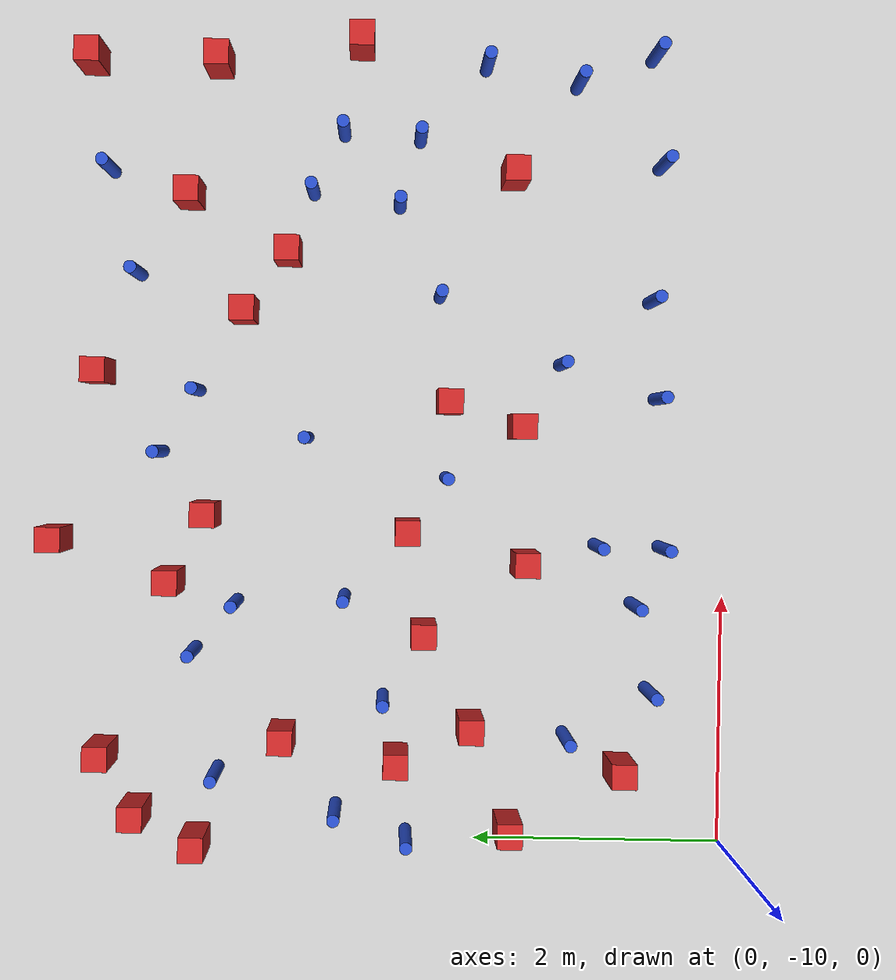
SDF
<sdf version="1.6">
 <world name="default">
  <model name="ground_plane">
   <static>1</static>
   <link name="link">
    <collision name="collision">
     <geometry><plane><normal>0 0 1</normal><size>100 100</size></plane></geometry>
     <surface><friction><ode><mu>100</mu><mu2>50</mu2></ode></friction></surface>
    </collision>
    <visual name="visual">
     <cast_shadows>0</cast_shadows>
     <geometry><plane><normal>0 0 1</normal><size>100 100</size></plane></geometry>
     <material>
      <ambient>1.0 1.0 1.0 1.0</ambient>
      <diffuse>0.8 0.8 0.8 1.0</diffuse>
      <specular>0.01 0.01 0.01 1.000000</specular>
     </material>
    </visual>
   </link>
  </model>
  <model name="pole_obstacle0">
   <static>true</static>
   <pose>0.552288672222 -5.89928015238 7.38925637345e-09 -8.471706928e-08 1.24976765086e-08 -1.74513093015e-07</pose>
   <link name="link">
    <pose>0 0 0.3 0 -0 0</pose>
    <inertial>
     <mass>1</mass>
     <inertia><ixx>0.145833</ixx><ixy>0</ixy><ixz>0</ixz><iyy>0.145833</iyy><iyz>0</iyz><izz>0.125</izz></inertia>
    </inertial>
    <collision name="collision">
     <geometry><cylinder><radius>0.05</radius><length>.6</length></cylinder></geometry>
    </collision>
    <visual name="visual">
     <geometry><cylinder><radius>0.05</radius><length>.6</length></cylinder></geometry>
     <material>
      <script><name>Gazebo/Blue</name><uri>file://media/materials/scripts/gazebo.material</uri></script>
     </material>
    </visual>
   </link>
  </model>
  <model name="pole_obstacle2">
   <static>true</static>
   <pose>5.726747599 -6.84969473188 7.38925637345e-09 -8.47170692796e-08 1.24976764786e-08 -1.74513093032e-07</pose>
   <link name="link">
    <pose>0 0 0.3 0 -0 0</pose>
    <inertial>
     <mass>1</mass>
     <inertia><ixx>0.145833</ixx><ixy>0</ixy><ixz>0</ixz><iyy>0.145833</iyy><iyz>0</iyz><izz>0.125</izz></inertia>
    </inertial>
    <collision name="collision">
     <geometry><cylinder><radius>0.05</radius><length>.6</length></cylinder></geometry>
    </collision>
    <visual name="visual">
     <geometry><cylinder><radius>0.05</radius><length>.6</length></cylinder></geometry>
     <material>
      <script><name>Gazebo/Blue</name><uri>file://media/materials/scripts/gazebo.material</uri></script>
     </material>
    </visual>
   </link>
  </model>
  <model name="pole_obstacle5">
   <static>true</static>
   <pose>0.265713233834 -6.86529294261 7.38925637345e-09 -8.47170692799e-08 1.24976765101e-08 -1.74513093014e-07</pose>
   <link name="link">
    <pose>0 0 0.3 0 -0 0</pose>
    <inertial>
     <mass>1</mass>
     <inertia><ixx>0.145833</ixx><ixy>0</ixy><ixz>0</ixz><iyy>0.145833</iyy><iyz>0</iyz><izz>0.125</izz></inertia>
    </inertial>
    <collision name="collision">
     <geometry><cylinder><radius>0.05</radius><length>.6</length></cylinder></geometry>
    </collision>
    <visual name="visual">
     <geometry><cylinder><radius>0.05</radius><length>.6</length></cylinder></geometry>
     <material>
      <script><name>Gazebo/Blue</name><uri>file://media/materials/scripts/gazebo.material</uri></script>
     </material>
    </visual>
   </link>
  </model>
  <model name="pole_obstacle13">
   <static>true</static>
   <pose>3.62405460499 -5.69707315796 7.38925637345e-09 -8.47170692798e-08 1.24976765033e-08 -1.74513093019e-07</pose>
   <link name="link">
    <pose>0 0 0.3 0 -0 0</pose>
    <inertial>
     <mass>1</mass>
     <inertia><ixx>0.145833</ixx><ixy>0</ixy><ixz>0</ixz><iyy>0.145833</iyy><iyz>0</iyz><izz>0.125</izz></inertia>
    </inertial>
    <collision name="collision">
     <geometry><cylinder><radius>0.05</radius><length>.6</length></cylinder></geometry>
    </collision>
    <visual name="visual">
     <geometry><cylinder><radius>0.05</radius><length>.6</length></cylinder></geometry>
     <material>
      <script><name>Gazebo/Blue</name><uri>file://media/materials/scripts/gazebo.material</uri></script>
     </material>
    </visual>
   </link>
  </model>
  <model name="pole_obstacle14">
   <static>true</static>
   <pose>1.97462156829 -6.91148437594 7.38925637345e-09 -8.471706928e-08 1.24976765202e-08 -1.7451309301e-07</pose>
   <link name="link">
    <pose>0 0 0.3 0 -0 0</pose>
    <inertial>
     <mass>1</mass>
     <inertia><ixx>0.145833</ixx><ixy>0</ixy><ixz>0</ixz><iyy>0.145833</iyy><iyz>0</iyz><izz>0.125</izz></inertia>
    </inertial>
    <collision name="collision">
     <geometry><cylinder><radius>0.05</radius><length>.6</length></cylinder></geometry>
    </collision>
    <visual name="visual">
     <geometry><cylinder><radius>0.05</radius><length>.6</length></cylinder></geometry>
     <material>
      <script><name>Gazebo/Blue</name><uri>file://media/materials/scripts/gazebo.material</uri></script>
     </material>
    </visual>
   </link>
  </model>
  <model name="square_post_obstacle18">
   <static>true</static>
   <pose>6.28908925948 -4.81410016549 1.91545236811e-07 -7.35059704564e-06 1.12565212e-07 2.39332434364e-05</pose>
   <link name="link">
    <pose>0 0 0.25 0 -0 0</pose>
    <inertial>
     <mass>100</mass>
     <inertia>
      <ixx>0.166667</ixx>
      <ixy>0</ixy>
      <ixz>0</ixz>
      <iyy>0.166667</iyy>
      <iyz>0</iyz>
      <izz>0.166667</izz>
     </inertia>
    </inertial>
    <collision name="collision"><geometry><box><size>.2 .2 .5</size></box></geometry></collision>
    <visual name="visual">
     <geometry><box><size>.2 .2 .5</size></box></geometry>
     <material>
      <script><name>Gazebo/Red</name><uri>file://media/materials/scripts/gazebo.material</uri></script>
     </material>
    </visual>
   </link>
  </model>
  <model name="square_post_obstacle24">
   <static>true</static>
   <pose>5.2009959434 -5.61545775832 1.91545236811e-07 -7.35059704564e-06 1.12565212e-07 2.39332434364e-05</pose>
   <link name="link">
    <pose>0 0 0.25 0 -0 0</pose>
    <inertial>
     <mass>100</mass>
     <inertia>
      <ixx>0.166667</ixx>
      <ixy>0</ixy>
      <ixz>0</ixz>
      <iyy>0.166667</iyy>
      <iyz>0</iyz>
      <izz>0.166667</izz>
     </inertia>
    </inertial>
    <collision name="collision"><geometry><box><size>.2 .2 .5</size></box></geometry></collision>
    <visual name="visual">
     <geometry><box><size>.2 .2 .5</size></box></geometry>
     <material>
      <script><name>Gazebo/Red</name><uri>file://media/materials/scripts/gazebo.material</uri></script>
     </material>
    </visual>
   </link>
  </model>
  <model name="pole_obstacle34">
   <static>true</static>
   <pose>0.0611854863166 -7.43807968166 7.38925637345e-09 -8.471706928e-08 1.2497676505e-08 -1.74513093019e-07</pose>
   <link name="link">
    <pose>0 0 0.3 0 -0 0</pose>
    <inertial>
     <mass>1</mass>
     <inertia><ixx>0.145833</ixx><ixy>0</ixy><ixz>0</ixz><iyy>0.145833</iyy><iyz>0</iyz><izz>0.125</izz></inertia>
    </inertial>
    <collision name="collision">
     <geometry><cylinder><radius>0.05</radius><length>.6</length></cylinder></geometry>
    </collision>
    <visual name="visual">
     <geometry><cylinder><radius>0.05</radius><length>.6</length></cylinder></geometry>
     <material>
      <script><name>Gazebo/Blue</name><uri>file://media/materials/scripts/gazebo.material</uri></script>
     </material>
    </visual>
   </link>
  </model>
  <model name="pole_obstacle54">
   <static>true</static>
   <pose>2.41237021046 -9.46922981814 7.38925637345e-09 -8.47170692793e-08 1.24976764408e-08 -1.74513093041e-07</pose>
   <link name="link">
    <pose>0 0 0.3 0 -0 0</pose>
    <inertial>
     <mass>1</mass>
     <inertia><ixx>0.145833</ixx><ixy>0</ixy><ixz>0</ixz><iyy>0.145833</iyy><iyz>0</iyz><izz>0.125</izz></inertia>
    </inertial>
    <collision name="collision">
     <geometry><cylinder><radius>0.05</radius><length>.6</length></cylinder></geometry>
    </collision>
    <visual name="visual">
     <geometry><cylinder><radius>0.05</radius><length>.6</length></cylinder></geometry>
     <material>
      <script><name>Gazebo/Blue</name><uri>file://media/materials/scripts/gazebo.material</uri></script>
     </material>
    </visual>
   </link>
  </model>
  <model name="square_post_obstacle44">
   <static>true</static>
   <pose>4.7484021377 -6.41635731774 1.91545236811e-07 -7.35059704564e-06 1.12565212e-07 2.39332434364e-05</pose>
   <link name="link">
    <pose>0 0 0.25 0 -0 0</pose>
    <inertial>
     <mass>100</mass>
     <inertia>
      <ixx>0.166667</ixx>
      <ixy>0</ixy>
      <ixz>0</ixz>
      <iyy>0.166667</iyy>
      <iyz>0</iyz>
      <izz>0.166667</izz>
     </inertia>
    </inertial>
    <collision name="collision"><geometry><box><size>.2 .2 .5</size></box></geometry></collision>
    <visual name="visual">
     <geometry><box><size>.2 .2 .5</size></box></geometry>
     <material>
      <script><name>Gazebo/Red</name><uri>file://media/materials/scripts/gazebo.material</uri></script>
     </material>
    </visual>
   </link>
  </model>
  <model name="pole_obstacle59">
   <static>true</static>
   <pose>4.403107617 -9.35817250478 7.38925637345e-09 -8.471706928e-08 1.24976765081e-08 -1.74513093015e-07</pose>
   <link name="link">
    <pose>0 0 0.3 0 -0 0</pose>
    <inertial>
     <mass>1</mass>
     <inertia><ixx>0.145833</ixx><ixy>0</ixy><ixz>0</ixz><iyy>0.145833</iyy><iyz>0</iyz><izz>0.125</izz></inertia>
    </inertial>
    <collision name="collision">
     <geometry><cylinder><radius>0.05</radius><length>.6</length></cylinder></geometry>
    </collision>
    <visual name="visual">
     <geometry><cylinder><radius>0.05</radius><length>.6</length></cylinder></geometry>
     <material>
      <script><name>Gazebo/Blue</name><uri>file://media/materials/scripts/gazebo.material</uri></script>
     </material>
    </visual>
   </link>
  </model>
  <model name="pole_obstacle69">
   <static>true</static>
   <pose>1.9490525188 -9.24918581859 7.38925637345e-09 -8.47170692798e-08 1.24976764881e-08 -1.74513093027e-07</pose>
   <link name="link">
    <pose>0 0 0.3 0 -0 0</pose>
    <inertial>
     <mass>1</mass>
     <inertia><ixx>0.145833</ixx><ixy>0</ixy><ixz>0</ixz><iyy>0.145833</iyy><iyz>0</iyz><izz>0.125</izz></inertia>
    </inertial>
    <collision name="collision">
     <geometry><cylinder><radius>0.05</radius><length>.6</length></cylinder></geometry>
    </collision>
    <visual name="visual">
     <geometry><cylinder><radius>0.05</radius><length>.6</length></cylinder></geometry>
     <material>
      <script><name>Gazebo/Blue</name><uri>file://media/materials/scripts/gazebo.material</uri></script>
     </material>
    </visual>
   </link>
  </model>
  <model name="pole_obstacle71">
   <static>true</static>
   <pose>1.16298150011 -7.23687250287 7.38925637345e-09 -8.47170692799e-08 1.24976765033e-08 -1.74513093018e-07</pose>
   <link name="link">
    <pose>0 0 0.3 0 -0 0</pose>
    <inertial>
     <mass>1</mass>
     <inertia><ixx>0.145833</ixx><ixy>0</ixy><ixz>0</ixz><iyy>0.145833</iyy><iyz>0</iyz><izz>0.125</izz></inertia>
    </inertial>
    <collision name="collision">
     <geometry><cylinder><radius>0.05</radius><length>.6</length></cylinder></geometry>
    </collision>
    <visual name="visual">
     <geometry><cylinder><radius>0.05</radius><length>.6</length></cylinder></geometry>
     <material>
      <script><name>Gazebo/Blue</name><uri>file://media/materials/scripts/gazebo.material</uri></script>
     </material>
    </visual>
   </link>
  </model>
  <model name="pole_obstacle75">
   <static>true</static>
   <pose>4.56066403676 -5.20536059698 7.38925637345e-09 -8.47170692796e-08 1.24976764786e-08 -1.74513093032e-07</pose>
   <link name="link">
    <pose>0 0 0.3 0 -0 0</pose>
    <inertial>
     <mass>1</mass>
     <inertia><ixx>0.145833</ixx><ixy>0</ixy><ixz>0</ixz><iyy>0.145833</iyy><iyz>0</iyz><izz>0.125</izz></inertia>
    </inertial>
    <collision name="collision">
     <geometry><cylinder><radius>0.05</radius><length>.6</length></cylinder></geometry>
    </collision>
    <visual name="visual">
     <geometry><cylinder><radius>0.05</radius><length>.6</length></cylinder></geometry>
     <material>
      <script><name>Gazebo/Blue</name><uri>file://media/materials/scripts/gazebo.material</uri></script>
     </material>
    </visual>
   </link>
  </model>
  <model name="square_post_obstacle66">
   <static>true</static>
   <pose>1.69523619898 -7.55312990781 1.91545236811e-07 -7.35059704564e-06 1.12565212e-07 2.39332434364e-05</pose>
   <link name="link">
    <pose>0 0 0.25 0 -0 0</pose>
    <inertial>
     <mass>100</mass>
     <inertia>
      <ixx>0.166667</ixx>
      <ixy>0</ixy>
      <ixz>0</ixz>
      <iyy>0.166667</iyy>
      <iyz>0</iyz>
      <izz>0.166667</izz>
     </inertia>
    </inertial>
    <collision name="collision"><geometry><box><size>.2 .2 .5</size></box></geometry></collision>
    <visual name="visual">
     <geometry><box><size>.2 .2 .5</size></box></geometry>
     <material>
      <script><name>Gazebo/Red</name><uri>file://media/materials/scripts/gazebo.material</uri></script>
     </material>
    </visual>
   </link>
  </model>
  <model name="pole_obstacle78">
   <static>true</static>
   <pose>5.68740669742 -7.46687375094 7.38925637345e-09 -8.47170692796e-08 1.24976764786e-08 -1.74513093032e-07</pose>
   <link name="link">
    <pose>0 0 0.3 0 -0 0</pose>
    <inertial>
     <mass>1</mass>
     <inertia><ixx>0.145833</ixx><ixy>0</ixy><ixz>0</ixz><iyy>0.145833</iyy><iyz>0</iyz><izz>0.125</izz></inertia>
    </inertial>
    <collision name="collision">
     <geometry><cylinder><radius>0.05</radius><length>.6</length></cylinder></geometry>
    </collision>
    <visual name="visual">
     <geometry><cylinder><radius>0.05</radius><length>.6</length></cylinder></geometry>
     <material>
      <script><name>Gazebo/Blue</name><uri>file://media/materials/scripts/gazebo.material</uri></script>
     </material>
    </visual>
   </link>
  </model>
  <model name="square_post_obstacle68">
   <static>true</static>
   <pose>0.843703836164 -6.42918117387 1.91545236811e-07 -7.35059704564e-06 1.12565212e-07 2.39332434364e-05</pose>
   <link name="link">
    <pose>0 0 0.25 0 -0 0</pose>
    <inertial>
     <mass>100</mass>
     <inertia>
      <ixx>0.166667</ixx>
      <ixy>0</ixy>
      <ixz>0</ixz>
      <iyy>0.166667</iyy>
      <iyz>0</iyz>
      <izz>0.166667</izz>
     </inertia>
    </inertial>
    <collision name="collision"><geometry><box><size>.2 .2 .5</size></box></geometry></collision>
    <visual name="visual">
     <geometry><box><size>.2 .2 .5</size></box></geometry>
     <material>
      <script><name>Gazebo/Red</name><uri>file://media/materials/scripts/gazebo.material</uri></script>
     </material>
    </visual>
   </link>
  </model>
  <model name="square_post_obstacle75">
   <static>true</static>
   <pose>3.7610594723 -4.90305564765 1.91545236811e-07 -7.35059704564e-06 1.12565212e-07 2.39332434364e-05</pose>
   <link name="link">
    <pose>0 0 0.25 0 -0 0</pose>
    <inertial>
     <mass>100</mass>
     <inertia>
      <ixx>0.166667</ixx>
      <ixy>0</ixy>
      <ixz>0</ixz>
      <iyy>0.166667</iyy>
      <iyz>0</iyz>
      <izz>0.166667</izz>
     </inertia>
    </inertial>
    <collision name="collision"><geometry><box><size>.2 .2 .5</size></box></geometry></collision>
    <visual name="visual">
     <geometry><box><size>.2 .2 .5</size></box></geometry>
     <material>
      <script><name>Gazebo/Red</name><uri>file://media/materials/scripts/gazebo.material</uri></script>
     </material>
    </visual>
   </link>
  </model>
  <model name="square_post_obstacle77">
   <static>true</static>
   <pose>6.27797381221 -5.83577190341 1.91545236811e-07 -7.35059704564e-06 1.12565212e-07 2.39332434364e-05</pose>
   <link name="link">
    <pose>0 0 0.25 0 -0 0</pose>
    <inertial>
     <mass>100</mass>
     <inertia>
      <ixx>0.166667</ixx>
      <ixy>0</ixy>
      <ixz>0</ixz>
      <iyy>0.166667</iyy>
      <iyz>0</iyz>
      <izz>0.166667</izz>
     </inertia>
    </inertial>
    <collision name="collision"><geometry><box><size>.2 .2 .5</size></box></geometry></collision>
    <visual name="visual">
     <geometry><box><size>.2 .2 .5</size></box></geometry>
     <material>
      <script><name>Gazebo/Red</name><uri>file://media/materials/scripts/gazebo.material</uri></script>
     </material>
    </visual>
   </link>
  </model>
  <model name="square_post_obstacle81">
   <static>true</static>
   <pose>6.44925846712 -6.98225727251 1.91545236811e-07 -7.35059704564e-06 1.12565212e-07 2.39332434364e-05</pose>
   <link name="link">
    <pose>0 0 0.25 0 -0 0</pose>
    <inertial>
     <mass>100</mass>
     <inertia>
      <ixx>0.166667</ixx>
      <ixy>0</ixy>
      <ixz>0</ixz>
      <iyy>0.166667</iyy>
      <iyz>0</iyz>
      <izz>0.166667</izz>
     </inertia>
    </inertial>
    <collision name="collision"><geometry><box><size>.2 .2 .5</size></box></geometry></collision>
    <visual name="visual">
     <geometry><box><size>.2 .2 .5</size></box></geometry>
     <material>
      <script><name>Gazebo/Red</name><uri>file://media/materials/scripts/gazebo.material</uri></script>
     </material>
    </visual>
   </link>
  </model>
  <model name="pole_obstacle100">
   <static>true</static>
   <pose>3.88168481784 -8.63528784399 7.38925637345e-09 -8.47170692793e-08 1.24976764408e-08 -1.74513093041e-07</pose>
   <link name="link">
    <pose>0 0 0.3 0 -0 0</pose>
    <inertial>
     <mass>1</mass>
     <inertia><ixx>0.145833</ixx><ixy>0</ixy><ixz>0</ixz><iyy>0.145833</iyy><iyz>0</iyz><izz>0.125</izz></inertia>
    </inertial>
    <collision name="collision">
     <geometry><cylinder><radius>0.05</radius><length>.6</length></cylinder></geometry>
    </collision>
    <visual name="visual">
     <geometry><cylinder><radius>0.05</radius><length>.6</length></cylinder></geometry>
     <material>
      <script><name>Gazebo/Blue</name><uri>file://media/materials/scripts/gazebo.material</uri></script>
     </material>
    </visual>
   </link>
  </model>
  <model name="square_post_obstacle92">
   <static>true</static>
   <pose>5.40658634911 -8.23358385811 1.91545236811e-07 -7.35059704564e-06 1.12565212e-07 2.39332434364e-05</pose>
   <link name="link">
    <pose>0 0 0.25 0 -0 0</pose>
    <inertial>
     <mass>100</mass>
     <inertia>
      <ixx>0.166667</ixx>
      <ixy>0</ixy>
      <ixz>0</ixz>
      <iyy>0.166667</iyy>
      <iyz>0</iyz>
      <izz>0.166667</izz>
     </inertia>
    </inertial>
    <collision name="collision"><geometry><box><size>.2 .2 .5</size></box></geometry></collision>
    <visual name="visual">
     <geometry><box><size>.2 .2 .5</size></box></geometry>
     <material>
      <script><name>Gazebo/Red</name><uri>file://media/materials/scripts/gazebo.material</uri></script>
     </material>
    </visual>
   </link>
  </model>
  <model name="square_post_obstacle93">
   <static>true</static>
   <pose>4.26967480329 -6.06856023027 1.91545236811e-07 -7.35059704564e-06 1.12565212e-07 2.39332434364e-05</pose>
   <link name="link">
    <pose>0 0 0.25 0 -0 0</pose>
    <inertial>
     <mass>100</mass>
     <inertia>
      <ixx>0.166667</ixx>
      <ixy>0</ixy>
      <ixz>0</ixz>
      <iyy>0.166667</iyy>
      <iyz>0</iyz>
      <izz>0.166667</izz>
     </inertia>
    </inertial>
    <collision name="collision"><geometry><box><size>.2 .2 .5</size></box></geometry></collision>
    <visual name="visual">
     <geometry><box><size>.2 .2 .5</size></box></geometry>
     <material>
      <script><name>Gazebo/Red</name><uri>file://media/materials/scripts/gazebo.material</uri></script>
     </material>
    </visual>
   </link>
  </model>
  <model name="square_post_obstacle99">
   <static>true</static>
   <pose>0.220000682491 -5.25678338181 1.91545236811e-07 -7.35059704564e-06 1.12565212e-07 2.39332434364e-05</pose>
   <link name="link">
    <pose>0 0 0.25 0 -0 0</pose>
    <inertial>
     <mass>100</mass>
     <inertia>
      <ixx>0.166667</ixx>
      <ixy>0</ixy>
      <ixz>0</ixz>
      <iyy>0.166667</iyy>
      <iyz>0</iyz>
      <izz>0.166667</izz>
     </inertia>
    </inertial>
    <collision name="collision"><geometry><box><size>.2 .2 .5</size></box></geometry></collision>
    <visual name="visual">
     <geometry><box><size>.2 .2 .5</size></box></geometry>
     <material>
      <script><name>Gazebo/Red</name><uri>file://media/materials/scripts/gazebo.material</uri></script>
     </material>
    </visual>
   </link>
  </model>
  <model name="square_post_obstacle103">
   <static>true</static>
   <pose>2.08626114343 -5.50006305933 1.91545236811e-07 -7.35059704564e-06 1.12565212e-07 2.39332434364e-05</pose>
   <link name="link">
    <pose>0 0 0.25 0 -0 0</pose>
    <inertial>
     <mass>100</mass>
     <inertia>
      <ixx>0.166667</ixx>
      <ixy>0</ixy>
      <ixz>0</ixz>
      <iyy>0.166667</iyy>
      <iyz>0</iyz>
      <izz>0.166667</izz>
     </inertia>
    </inertial>
    <collision name="collision"><geometry><box><size>.2 .2 .5</size></box></geometry></collision>
    <visual name="visual">
     <geometry><box><size>.2 .2 .5</size></box></geometry>
     <material>
      <script><name>Gazebo/Red</name><uri>file://media/materials/scripts/gazebo.material</uri></script>
     </material>
    </visual>
   </link>
  </model>
  <model name="square_post_obstacle107">
   <static>true</static>
   <pose>2.27365245362 -8.36186591891 1.91545236811e-07 -7.35059704564e-06 1.12565212e-07 2.39332434364e-05</pose>
   <link name="link">
    <pose>0 0 0.25 0 -0 0</pose>
    <inertial>
     <mass>100</mass>
     <inertia>
      <ixx>0.166667</ixx>
      <ixy>0</ixy>
      <ixz>0</ixz>
      <iyy>0.166667</iyy>
      <iyz>0</iyz>
      <izz>0.166667</izz>
     </inertia>
    </inertial>
    <collision name="collision"><geometry><box><size>.2 .2 .5</size></box></geometry></collision>
    <visual name="visual">
     <geometry><box><size>.2 .2 .5</size></box></geometry>
     <material>
      <script><name>Gazebo/Red</name><uri>file://media/materials/scripts/gazebo.material</uri></script>
     </material>
    </visual>
   </link>
  </model>
  <model name="pole_obstacle113">
   <static>true</static>
   <pose>5.14501522393 -7.30920517493 7.38925637345e-09 -8.47170692796e-08 1.24976764786e-08 -1.74513093032e-07</pose>
   <link name="link">
    <pose>0 0 0.3 0 -0 0</pose>
    <inertial>
     <mass>1</mass>
     <inertia><ixx>0.145833</ixx><ixy>0</ixy><ixz>0</ixz><iyy>0.145833</iyy><iyz>0</iyz><izz>0.125</izz></inertia>
    </inertial>
    <collision name="collision">
     <geometry><cylinder><radius>0.05</radius><length>.6</length></cylinder></geometry>
    </collision>
    <visual name="visual">
     <geometry><cylinder><radius>0.05</radius><length>.6</length></cylinder></geometry>
     <material>
      <script><name>Gazebo/Blue</name><uri>file://media/materials/scripts/gazebo.material</uri></script>
     </material>
    </visual>
   </link>
  </model>
  <model name="pole_obstacle116">
   <static>true</static>
   <pose>1.52727540107 -5.70347109138 7.38925637345e-09 -8.47170692799e-08 1.24976765033e-08 -1.74513093018e-07</pose>
   <link name="link">
    <pose>0 0 0.3 0 -0 0</pose>
    <inertial>
     <mass>1</mass>
     <inertia><ixx>0.145833</ixx><ixy>0</ixy><ixz>0</ixz><iyy>0.145833</iyy><iyz>0</iyz><izz>0.125</izz></inertia>
    </inertial>
    <collision name="collision">
     <geometry><cylinder><radius>0.05</radius><length>.6</length></cylinder></geometry>
    </collision>
    <visual name="visual">
     <geometry><cylinder><radius>0.05</radius><length>.6</length></cylinder></geometry>
     <material>
      <script><name>Gazebo/Blue</name><uri>file://media/materials/scripts/gazebo.material</uri></script>
     </material>
    </visual>
   </link>
  </model>
  <model name="pole_obstacle124">
   <static>true</static>
   <pose>4.41716860628 -7.64705998715 7.38925637345e-09 -8.47170692796e-08 1.24976764786e-08 -1.74513093032e-07</pose>
   <link name="link">
    <pose>0 0 0.3 0 -0 0</pose>
    <inertial>
     <mass>1</mass>
     <inertia><ixx>0.145833</ixx><ixy>0</ixy><ixz>0</ixz><iyy>0.145833</iyy><iyz>0</iyz><izz>0.125</izz></inertia>
    </inertial>
    <collision name="collision">
     <geometry><cylinder><radius>0.05</radius><length>.6</length></cylinder></geometry>
    </collision>
    <visual name="visual">
     <geometry><cylinder><radius>0.05</radius><length>.6</length></cylinder></geometry>
     <material>
      <script><name>Gazebo/Blue</name><uri>file://media/materials/scripts/gazebo.material</uri></script>
     </material>
    </visual>
   </link>
  </model>
  <model name="square_post_obstacle125">
   <static>true</static>
   <pose>2.4105910045 -4.57347378195 1.91545236811e-07 -7.35059704564e-06 1.12565212e-07 2.39332434364e-05</pose>
   <link name="link">
    <pose>0 0 0.25 0 -0 0</pose>
    <inertial>
     <mass>100</mass>
     <inertia>
      <ixx>0.166667</ixx>
      <ixy>0</ixy>
      <ixz>0</ixz>
      <iyy>0.166667</iyy>
      <iyz>0</iyz>
      <izz>0.166667</izz>
     </inertia>
    </inertial>
    <collision name="collision"><geometry><box><size>.2 .2 .5</size></box></geometry></collision>
    <visual name="visual">
     <geometry><box><size>.2 .2 .5</size></box></geometry>
     <material>
      <script><name>Gazebo/Red</name><uri>file://media/materials/scripts/gazebo.material</uri></script>
     </material>
    </visual>
   </link>
  </model>
  <model name="pole_obstacle130">
   <static>true</static>
   <pose>3.2532453518 -6.58778740214 7.38925637345e-09 -8.47170692798e-08 1.24976765033e-08 -1.74513093019e-07</pose>
   <link name="link">
    <pose>0 0 0.3 0 -0 0</pose>
    <inertial>
     <mass>1</mass>
     <inertia><ixx>0.145833</ixx><ixy>0</ixy><ixz>0</ixz><iyy>0.145833</iyy><iyz>0</iyz><izz>0.125</izz></inertia>
    </inertial>
    <collision name="collision">
     <geometry><cylinder><radius>0.05</radius><length>.6</length></cylinder></geometry>
    </collision>
    <visual name="visual">
     <geometry><cylinder><radius>0.05</radius><length>.6</length></cylinder></geometry>
     <material>
      <script><name>Gazebo/Blue</name><uri>file://media/materials/scripts/gazebo.material</uri></script>
     </material>
    </visual>
   </link>
  </model>
  <model name="pole_obstacle147">
   <static>true</static>
   <pose>1.25650389097 -9.37915358288 7.38925637345e-09 -8.47170692798e-08 1.24976764881e-08 -1.74513093027e-07</pose>
   <link name="link">
    <pose>0 0 0.3 0 -0 0</pose>
    <inertial>
     <mass>1</mass>
     <inertia><ixx>0.145833</ixx><ixy>0</ixy><ixz>0</ixz><iyy>0.145833</iyy><iyz>0</iyz><izz>0.125</izz></inertia>
    </inertial>
    <collision name="collision">
     <geometry><cylinder><radius>0.05</radius><length>.6</length></cylinder></geometry>
    </collision>
    <visual name="visual">
     <geometry><cylinder><radius>0.05</radius><length>.6</length></cylinder></geometry>
     <material>
      <script><name>Gazebo/Blue</name><uri>file://media/materials/scripts/gazebo.material</uri></script>
     </material>
    </visual>
   </link>
  </model>
  <model name="square_post_obstacle143">
   <static>true</static>
   <pose>3.3701711215 -8.32019302199 1.91545236811e-07 -7.35059704564e-06 1.12565212e-07 2.39332434364e-05</pose>
   <link name="link">
    <pose>0 0 0.25 0 -0 0</pose>
    <inertial>
     <mass>100</mass>
     <inertia>
      <ixx>0.166667</ixx>
      <ixy>0</ixy>
      <ixz>0</ixz>
      <iyy>0.166667</iyy>
      <iyz>0</iyz>
      <izz>0.166667</izz>
     </inertia>
    </inertial>
    <collision name="collision"><geometry><box><size>.2 .2 .5</size></box></geometry></collision>
    <visual name="visual">
     <geometry><box><size>.2 .2 .5</size></box></geometry>
     <material>
      <script><name>Gazebo/Red</name><uri>file://media/materials/scripts/gazebo.material</uri></script>
     </material>
    </visual>
   </link>
  </model>
  <model name="square_post_obstacle144">
   <static>true</static>
   <pose>0.623304747291 -9.15128701665 1.91545236811e-07 -7.35059704564e-06 1.12565212e-07 2.39332434364e-05</pose>
   <link name="link">
    <pose>0 0 0.25 0 -0 0</pose>
    <inertial>
     <mass>100</mass>
     <inertia>
      <ixx>0.166667</ixx>
      <ixy>0</ixy>
      <ixz>0</ixz>
      <iyy>0.166667</iyy>
      <iyz>0</iyz>
      <izz>0.166667</izz>
     </inertia>
    </inertial>
    <collision name="collision"><geometry><box><size>.2 .2 .5</size></box></geometry></collision>
    <visual name="visual">
     <geometry><box><size>.2 .2 .5</size></box></geometry>
     <material>
      <script><name>Gazebo/Red</name><uri>file://media/materials/scripts/gazebo.material</uri></script>
     </material>
    </visual>
   </link>
  </model>
  <model name="pole_obstacle150">
   <static>true</static>
   <pose>2.9467657834 -7.71972627525 7.38925637345e-09 -8.47170692798e-08 1.24976765033e-08 -1.74513093019e-07</pose>
   <link name="link">
    <pose>0 0 0.3 0 -0 0</pose>
    <inertial>
     <mass>1</mass>
     <inertia><ixx>0.145833</ixx><ixy>0</ixy><ixz>0</ixz><iyy>0.145833</iyy><iyz>0</iyz><izz>0.125</izz></inertia>
    </inertial>
    <collision name="collision">
     <geometry><cylinder><radius>0.05</radius><length>.6</length></cylinder></geometry>
    </collision>
    <visual name="visual">
     <geometry><cylinder><radius>0.05</radius><length>.6</length></cylinder></geometry>
     <material>
      <script><name>Gazebo/Blue</name><uri>file://media/materials/scripts/gazebo.material</uri></script>
     </material>
    </visual>
   </link>
  </model>
  <model name="pole_obstacle156">
   <static>true</static>
   <pose>6.14703836218 -8.73814823734 7.38925637345e-09 -8.471706928e-08 1.24976765081e-08 -1.74513093015e-07</pose>
   <link name="link">
    <pose>0 0 0.3 0 -0 0</pose>
    <inertial>
     <mass>1</mass>
     <inertia><ixx>0.145833</ixx><ixy>0</ixy><ixz>0</ixz><iyy>0.145833</iyy><iyz>0</iyz><izz>0.125</izz></inertia>
    </inertial>
    <collision name="collision">
     <geometry><cylinder><radius>0.05</radius><length>.6</length></cylinder></geometry>
    </collision>
    <visual name="visual">
     <geometry><cylinder><radius>0.05</radius><length>.6</length></cylinder></geometry>
     <material>
      <script><name>Gazebo/Blue</name><uri>file://media/materials/scripts/gazebo.material</uri></script>
     </material>
    </visual>
   </link>
  </model>
  <model name="pole_obstacle157">
   <static>true</static>
   <pose>1.9197597124 -6.03621423221 7.38925637345e-09 -8.47170692799e-08 1.24976765033e-08 -1.74513093018e-07</pose>
   <link name="link">
    <pose>0 0 0.3 0 -0 0</pose>
    <inertial>
     <mass>1</mass>
     <inertia><ixx>0.145833</ixx><ixy>0</ixy><ixz>0</ixz><iyy>0.145833</iyy><iyz>0</iyz><izz>0.125</izz></inertia>
    </inertial>
    <collision name="collision">
     <geometry><cylinder><radius>0.05</radius><length>.6</length></cylinder></geometry>
    </collision>
    <visual name="visual">
     <geometry><cylinder><radius>0.05</radius><length>.6</length></cylinder></geometry>
     <material>
      <script><name>Gazebo/Blue</name><uri>file://media/materials/scripts/gazebo.material</uri></script>
     </material>
    </visual>
   </link>
  </model>
  <model name="pole_obstacle160">
   <static>true</static>
   <pose>2.42147998817 -8.94354616063 7.38925637345e-09 -8.47170692793e-08 1.24976764408e-08 -1.74513093041e-07</pose>
   <link name="link">
    <pose>0 0 0.3 0 -0 0</pose>
    <inertial>
     <mass>1</mass>
     <inertia><ixx>0.145833</ixx><ixy>0</ixy><ixz>0</ixz><iyy>0.145833</iyy><iyz>0</iyz><izz>0.125</izz></inertia>
    </inertial>
    <collision name="collision">
     <geometry><cylinder><radius>0.05</radius><length>.6</length></cylinder></geometry>
    </collision>
    <visual name="visual">
     <geometry><cylinder><radius>0.05</radius><length>.6</length></cylinder></geometry>
     <material>
      <script><name>Gazebo/Blue</name><uri>file://media/materials/scripts/gazebo.material</uri></script>
     </material>
    </visual>
   </link>
  </model>
  <model name="square_post_obstacle163">
   <static>true</static>
   <pose>3.55981640269 -7.73409177594 1.91545236811e-07 -7.35059704564e-06 1.12565212e-07 2.39332434364e-05</pose>
   <link name="link">
    <pose>0 0 0.25 0 -0 0</pose>
    <inertial>
     <mass>100</mass>
     <inertia>
      <ixx>0.166667</ixx>
      <ixy>0</ixy>
      <ixz>0</ixz>
      <iyy>0.166667</iyy>
      <iyz>0</iyz>
      <izz>0.166667</izz>
     </inertia>
    </inertial>
    <collision name="collision"><geometry><box><size>.2 .2 .5</size></box></geometry></collision>
    <visual name="visual">
     <geometry><box><size>.2 .2 .5</size></box></geometry>
     <material>
      <script><name>Gazebo/Red</name><uri>file://media/materials/scripts/gazebo.material</uri></script>
     </material>
    </visual>
   </link>
  </model>
  <model name="square_post_obstacle167">
   <static>true</static>
   <pose>2.5118474499 -7.41211512826 1.91545236811e-07 -7.35059704564e-06 1.12565212e-07 2.39332434364e-05</pose>
   <link name="link">
    <pose>0 0 0.25 0 -0 0</pose>
    <inertial>
     <mass>100</mass>
     <inertia>
      <ixx>0.166667</ixx>
      <ixy>0</ixy>
      <ixz>0</ixz>
      <iyy>0.166667</iyy>
      <iyz>0</iyz>
      <izz>0.166667</izz>
     </inertia>
    </inertial>
    <collision name="collision"><geometry><box><size>.2 .2 .5</size></box></geometry></collision>
    <visual name="visual">
     <geometry><box><size>.2 .2 .5</size></box></geometry>
     <material>
      <script><name>Gazebo/Red</name><uri>file://media/materials/scripts/gazebo.material</uri></script>
     </material>
    </visual>
   </link>
  </model>
  <model name="square_post_obstacle173">
   <static>true</static>
   <pose>-0.011913383439 -5.74280282613 1.91545236811e-07 -7.35059704564e-06 1.12565212e-07 2.39332434364e-05</pose>
   <link name="link">
    <pose>0 0 0.25 0 -0 0</pose>
    <inertial>
     <mass>100</mass>
     <inertia>
      <ixx>0.166667</ixx>
      <ixy>0</ixy>
      <ixz>0</ixz>
      <iyy>0.166667</iyy>
      <iyz>0</iyz>
      <izz>0.166667</izz>
     </inertia>
    </inertial>
    <collision name="collision"><geometry><box><size>.2 .2 .5</size></box></geometry></collision>
    <visual name="visual">
     <geometry><box><size>.2 .2 .5</size></box></geometry>
     <material>
      <script><name>Gazebo/Red</name><uri>file://media/materials/scripts/gazebo.material</uri></script>
     </material>
    </visual>
   </link>
  </model>
  <model name="square_post_obstacle181">
   <static>true</static>
   <pose>0.137764309941 -8.25646313655 1.91545236811e-07 -7.35059704564e-06 1.12565212e-07 2.39332434364e-05</pose>
   <link name="link">
    <pose>0 0 0.25 0 -0 0</pose>
    <inertial>
     <mass>100</mass>
     <inertia>
      <ixx>0.166667</ixx>
      <ixy>0</ixy>
      <ixz>0</ixz>
      <iyy>0.166667</iyy>
      <iyz>0</iyz>
      <izz>0.166667</izz>
     </inertia>
    </inertial>
    <collision name="collision"><geometry><box><size>.2 .2 .5</size></box></geometry></collision>
    <visual name="visual">
     <geometry><box><size>.2 .2 .5</size></box></geometry>
     <material>
      <script><name>Gazebo/Red</name><uri>file://media/materials/scripts/gazebo.material</uri></script>
     </material>
    </visual>
   </link>
  </model>
  <model name="pole_obstacle183">
   <static>true</static>
   <pose>0.881171966764 -8.7096474169 7.38925637345e-09 -8.47170692797e-08 1.249767648e-08 -1.74513093032e-07</pose>
   <link name="link">
    <pose>0 0 0.3 0 -0 0</pose>
    <inertial>
     <mass>1</mass>
     <inertia><ixx>0.145833</ixx><ixy>0</ixy><ixz>0</ixz><iyy>0.145833</iyy><iyz>0</iyz><izz>0.125</izz></inertia>
    </inertial>
    <collision name="collision">
     <geometry><cylinder><radius>0.05</radius><length>.6</length></cylinder></geometry>
    </collision>
    <visual name="visual">
     <geometry><cylinder><radius>0.05</radius><length>.6</length></cylinder></geometry>
     <material>
      <script><name>Gazebo/Blue</name><uri>file://media/materials/scripts/gazebo.material</uri></script>
     </material>
    </visual>
   </link>
  </model>
  <model name="square_post_obstacle183">
   <static>true</static>
   <pose>0.69012143102 -4.97355520746 1.91545236811e-07 -7.35059704564e-06 1.12565212e-07 2.39332434364e-05</pose>
   <link name="link">
    <pose>0 0 0.25 0 -0 0</pose>
    <inertial>
     <mass>100</mass>
     <inertia>
      <ixx>0.166667</ixx>
      <ixy>0</ixy>
      <ixz>0</ixz>
      <iyy>0.166667</iyy>
      <iyz>0</iyz>
      <izz>0.166667</izz>
     </inertia>
    </inertial>
    <collision name="collision"><geometry><box><size>.2 .2 .5</size></box></geometry></collision>
    <visual name="visual">
     <geometry><box><size>.2 .2 .5</size></box></geometry>
     <material>
      <script><name>Gazebo/Red</name><uri>file://media/materials/scripts/gazebo.material</uri></script>
     </material>
    </visual>
   </link>
  </model>
  <model name="square_post_obstacle188">
   <static>true</static>
   <pose>0.951061774833 -7.94028273363 1.91545236811e-07 -7.35059704564e-06 1.12565212e-07 2.39332434364e-05</pose>
   <link name="link">
    <pose>0 0 0.25 0 -0 0</pose>
    <inertial>
     <mass>100</mass>
     <inertia>
      <ixx>0.166667</ixx>
      <ixy>0</ixy>
      <ixz>0</ixz>
      <iyy>0.166667</iyy>
      <iyz>0</iyz>
      <izz>0.166667</izz>
     </inertia>
    </inertial>
    <collision name="collision"><geometry><box><size>.2 .2 .5</size></box></geometry></collision>
    <visual name="visual">
     <geometry><box><size>.2 .2 .5</size></box></geometry>
     <material>
      <script><name>Gazebo/Red</name><uri>file://media/materials/scripts/gazebo.material</uri></script>
     </material>
    </visual>
   </link>
  </model>
  <model name="pole_obstacle188">
   <static>true</static>
   <pose>5.39852740102 -4.97164823106 7.38925637345e-09 -8.47170692796e-08 1.24976764786e-08 -1.74513093032e-07</pose>
   <link name="link">
    <pose>0 0 0.3 0 -0 0</pose>
    <inertial>
     <mass>1</mass>
     <inertia><ixx>0.145833</ixx><ixy>0</ixy><ixz>0</ixz><iyy>0.145833</iyy><iyz>0</iyz><izz>0.125</izz></inertia>
    </inertial>
    <collision name="collision">
     <geometry><cylinder><radius>0.05</radius><length>.6</length></cylinder></geometry>
    </collision>
    <visual name="visual">
     <geometry><cylinder><radius>0.05</radius><length>.6</length></cylinder></geometry>
     <material>
      <script><name>Gazebo/Blue</name><uri>file://media/materials/scripts/gazebo.material</uri></script>
     </material>
    </visual>
   </link>
  </model>
  <model name="pole_obstacle191">
   <static>true</static>
   <pose>5.49636828827 -9.42310573258 7.38925637345e-09 -8.471706928e-08 1.24976765081e-08 -1.74513093015e-07</pose>
   <link name="link">
    <pose>0 0 0.3 0 -0 0</pose>
    <inertial>
     <mass>1</mass>
     <inertia><ixx>0.145833</ixx><ixy>0</ixy><ixz>0</ixz><iyy>0.145833</iyy><iyz>0</iyz><izz>0.125</izz></inertia>
    </inertial>
    <collision name="collision">
     <geometry><cylinder><radius>0.05</radius><length>.6</length></cylinder></geometry>
    </collision>
    <visual name="visual">
     <geometry><cylinder><radius>0.05</radius><length>.6</length></cylinder></geometry>
     <material>
      <script><name>Gazebo/Blue</name><uri>file://media/materials/scripts/gazebo.material</uri></script>
     </material>
    </visual>
   </link>
  </model>
  <model name="pole_obstacle192">
   <static>true</static>
   <pose>3.61609383618 -9.41732875416 7.38925637345e-09 -8.47170692793e-08 1.24976764408e-08 -1.74513093041e-07</pose>
   <link name="link">
    <pose>0 0 0.3 0 -0 0</pose>
    <inertial>
     <mass>1</mass>
     <inertia><ixx>0.145833</ixx><ixy>0</ixy><ixz>0</ixz><iyy>0.145833</iyy><iyz>0</iyz><izz>0.125</izz></inertia>
    </inertial>
    <collision name="collision">
     <geometry><cylinder><radius>0.05</radius><length>.6</length></cylinder></geometry>
    </collision>
    <visual name="visual">
     <geometry><cylinder><radius>0.05</radius><length>.6</length></cylinder></geometry>
     <material>
      <script><name>Gazebo/Blue</name><uri>file://media/materials/scripts/gazebo.material</uri></script>
     </material>
    </visual>
   </link>
  </model>
  <model name="pole_obstacle194">
   <static>true</static>
   <pose>3.12196078925 -5.40521620693 7.38925637345e-09 -8.47170692798e-08 1.24976765033e-08 -1.74513093019e-07</pose>
   <link name="link">
    <pose>0 0 0.3 0 -0 0</pose>
    <inertial>
     <mass>1</mass>
     <inertia><ixx>0.145833</ixx><ixy>0</ixy><ixz>0</ixz><iyy>0.145833</iyy><iyz>0</iyz><izz>0.125</izz></inertia>
    </inertial>
    <collision name="collision">
     <geometry><cylinder><radius>0.05</radius><length>.6</length></cylinder></geometry>
    </collision>
    <visual name="visual">
     <geometry><cylinder><radius>0.05</radius><length>.6</length></cylinder></geometry>
     <material>
      <script><name>Gazebo/Blue</name><uri>file://media/materials/scripts/gazebo.material</uri></script>
     </material>
    </visual>
   </link>
  </model>
  <model name="pole_obstacle200">
   <static>true</static>
   <pose>6.28241622326 -7.99527820264 7.38925637345e-09 -8.47170692798e-08 1.24976764934e-08 -1.74513093022e-07</pose>
   <link name="link">
    <pose>0 0 0.3 0 -0 0</pose>
    <inertial>
     <mass>1</mass>
     <inertia><ixx>0.145833</ixx><ixy>0</ixy><ixz>0</ixz><iyy>0.145833</iyy><iyz>0</iyz><izz>0.125</izz></inertia>
    </inertial>
    <collision name="collision">
     <geometry><cylinder><radius>0.05</radius><length>.6</length></cylinder></geometry>
    </collision>
    <visual name="visual">
     <geometry><cylinder><radius>0.05</radius><length>.6</length></cylinder></geometry>
     <material>
      <script><name>Gazebo/Blue</name><uri>file://media/materials/scripts/gazebo.material</uri></script>
     </material>
    </visual>
   </link>
  </model>
  <model name="pole_obstacle205">
   <static>true</static>
   <pose>6.37777224316 -9.35036295748 7.38925637345e-09 -8.471706928e-08 1.24976765081e-08 -1.74513093015e-07</pose>
   <link name="link">
    <pose>0 0 0.3 0 -0 0</pose>
    <inertial>
     <mass>1</mass>
     <inertia><ixx>0.145833</ixx><ixy>0</ixy><ixz>0</ixz><iyy>0.145833</iyy><iyz>0</iyz><izz>0.125</izz></inertia>
    </inertial>
    <collision name="collision">
     <geometry><cylinder><radius>0.05</radius><length>.6</length></cylinder></geometry>
    </collision>
    <visual name="visual">
     <geometry><cylinder><radius>0.05</radius><length>.6</length></cylinder></geometry>
     <material>
      <script><name>Gazebo/Blue</name><uri>file://media/materials/scripts/gazebo.material</uri></script>
     </material>
    </visual>
   </link>
  </model>
  <model name="pole_obstacle208">
   <static>true</static>
   <pose>5.24191489428 -6.6083767902 7.38925637345e-09 -8.47170692796e-08 1.24976764786e-08 -1.74513093032e-07</pose>
   <link name="link">
    <pose>0 0 0.3 0 -0 0</pose>
    <inertial>
     <mass>1</mass>
     <inertia><ixx>0.145833</ixx><ixy>0</ixy><ixz>0</ixz><iyy>0.145833</iyy><iyz>0</iyz><izz>0.125</izz></inertia>
    </inertial>
    <collision name="collision">
     <geometry><cylinder><radius>0.05</radius><length>.6</length></cylinder></geometry>
    </collision>
    <visual name="visual">
     <geometry><cylinder><radius>0.05</radius><length>.6</length></cylinder></geometry>
     <material>
      <script><name>Gazebo/Blue</name><uri>file://media/materials/scripts/gazebo.material</uri></script>
     </material>
    </visual>
   </link>
  </model>
  <model name="square_post_obstacle209">
   <static>true</static>
   <pose>0.669687152461 -7.34685064983 1.91545236811e-07 -7.35059704564e-06 1.12565212e-07 2.39332434364e-05</pose>
   <link name="link">
    <pose>0 0 0.25 0 -0 0</pose>
    <inertial>
     <mass>100</mass>
     <inertia>
      <ixx>0.166667</ixx>
      <ixy>0</ixy>
      <ixz>0</ixz>
      <iyy>0.166667</iyy>
      <iyz>0</iyz>
      <izz>0.166667</izz>
     </inertia>
    </inertial>
    <collision name="collision"><geometry><box><size>.2 .2 .5</size></box></geometry></collision>
    <visual name="visual">
     <geometry><box><size>.2 .2 .5</size></box></geometry>
     <material>
      <script><name>Gazebo/Red</name><uri>file://media/materials/scripts/gazebo.material</uri></script>
     </material>
    </visual>
   </link>
  </model>
  <model name="square_post_obstacle211">
   <static>true</static>
   <pose>2.62755607735 -5.7874974719 1.91545236811e-07 -7.35059704564e-06 1.12565212e-07 2.39332434364e-05</pose>
   <link name="link">
    <pose>0 0 0.25 0 -0 0</pose>
    <inertial>
     <mass>100</mass>
     <inertia>
      <ixx>0.166667</ixx>
      <ixy>0</ixy>
      <ixz>0</ixz>
      <iyy>0.166667</iyy>
      <iyz>0</iyz>
      <izz>0.166667</izz>
     </inertia>
    </inertial>
    <collision name="collision"><geometry><box><size>.2 .2 .5</size></box></geometry></collision>
    <visual name="visual">
     <geometry><box><size>.2 .2 .5</size></box></geometry>
     <material>
      <script><name>Gazebo/Red</name><uri>file://media/materials/scripts/gazebo.material</uri></script>
     </material>
    </visual>
   </link>
  </model>
 </world>
</sdf>
